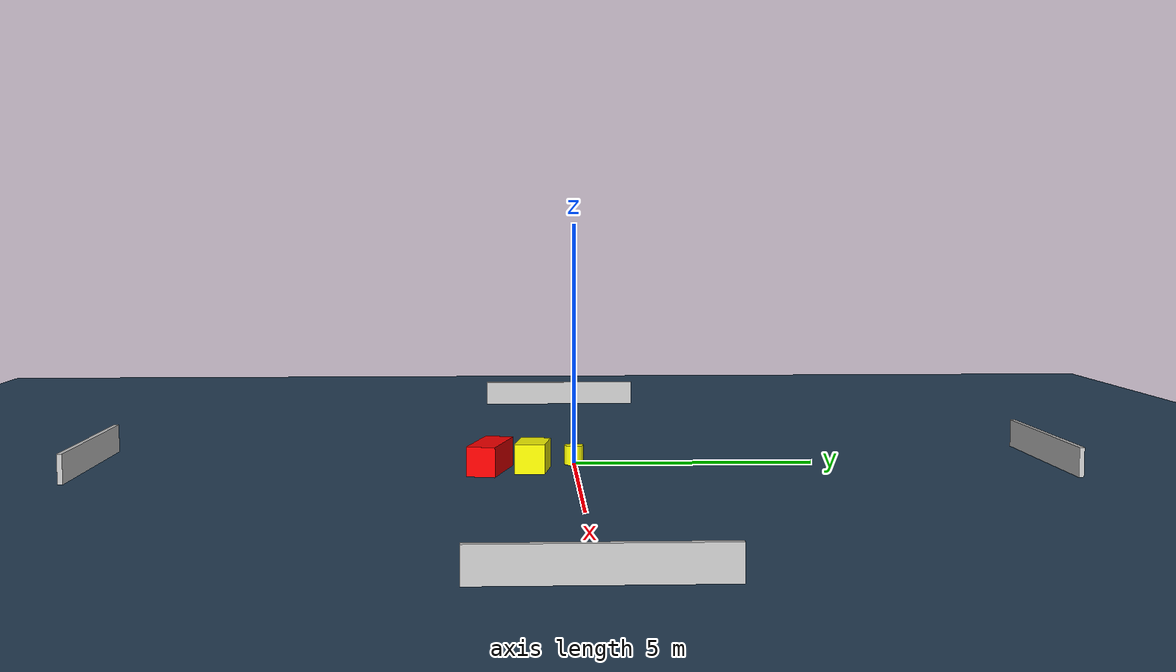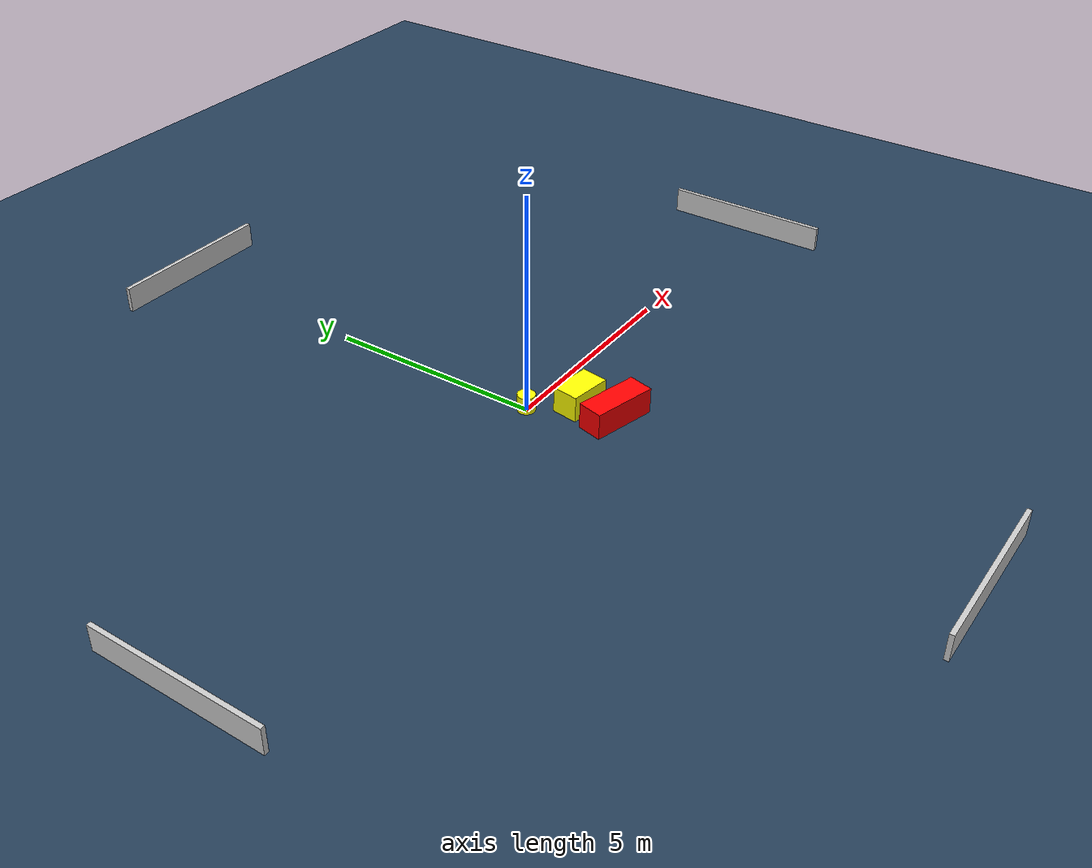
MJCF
<?xml version="1.0" ?>
<mujoco model="generated_environment">
  <option timestep="0.01" integrator="RK4" cone="elliptic"/>
  <default>
    <geom density="1"/>
  </default>
  <asset>
    <texture builtin="gradient" height="3072" name="skybox" rgb1="0.3 0.5 0.7" rgb2="0 0 0" type="skybox" width="512"/>
    <texture builtin="checker" height="300" name="groundplane" rgb1="0.2 0.3 0.4" rgb2="0.1 0.2 0.3" type="2d" width="300"/>
    <material name="groundplane" reflectance="0.2" texrepeat="5 5" texture="groundplane"/>
  </asset>
  <worldbody>
    <light dir="0 0 -1" directional="true" pos="0 0 1.5"/>
    <geom condim="3" friction="0.5 0.005 0.001" material="groundplane" name="floor" pos="0 0 0" size="0 0 0.05" type="plane"/>
    <body name="walls">
      <geom name="wall_1" condim="4" pos="-10.0 0.0 0.3" rgba="0.800000011920929 0.800000011920929 0.800000011920929 1.0" size="0.05 2.0 0.3" type="box"/>
      <geom name="wall_2" condim="4" pos="10.0 0.0 0.3" rgba="0.800000011920929 0.800000011920929 0.800000011920929 1.0" size="0.05 2.0 0.3" type="box"/>
      <geom name="wall_3" condim="4" pos="0.0 -10.0 0.3" rgba="0.800000011920929 0.800000011920929 0.800000011920929 1.0" size="2.0 0.05 0.3" type="box"/>
      <geom name="wall_4" condim="4" pos="0.0 10.0 0.3" rgba="0.800000011920929 0.800000011920929 0.800000011920929 1.0" size="2.0 0.05 0.3" type="box"/>
    </body>
    <body name="robot">
      <joint name="joint_x" type="slide" pos="0 0 0" axis="1 0 0"/>
      <joint name="joint_y" type="slide" pos="0 0 0" axis="0 1 0"/>
      <geom name="robot" type="cylinder" pos="0.0 0.0 0.2" size="0.2 0.2 0.0" mass="5.0" friction="1.0 0.005 0.0001" condim="4" rgba="1.0 1.0 0.0 1.0"/>
    </body>
    <body name="obstacle_1_movable">
      <geom name="obstacle_1_movable" condim="4" pos="0.7280197848222196 -0.8693344458488176 0.3" euler="0 0 171.40573639358675" friction="0.0 0.005 0.001" rgba="1.0 1.0 0.0 1.0" size="0.4828939108140867 0.307493621071035 0.3" type="box" mass="0.1"/>
      <joint type="free"/>
    </body>
    <body name="obstacle_2_static">
      <geom name="obstacle_2_static" condim="4" pos="0.7609677715900143 -1.7330099618088761 0.3" euler="0 0 256.01102744252523" friction="0.0 0.005 0.001" rgba="1.0 0.0 0.0 1.0" size="0.2926690018315127 0.7482211153058971 0.3" type="box"/>
    </body>
  </worldbody>
  <actuator>
    <motor name="actuator_x" joint="joint_x" gear="1" ctrlrange="-1 1"/>
    <motor name="actuator_y" joint="joint_y" gear="1" ctrlrange="-1 1"/>
  </actuator>
</mujoco>
